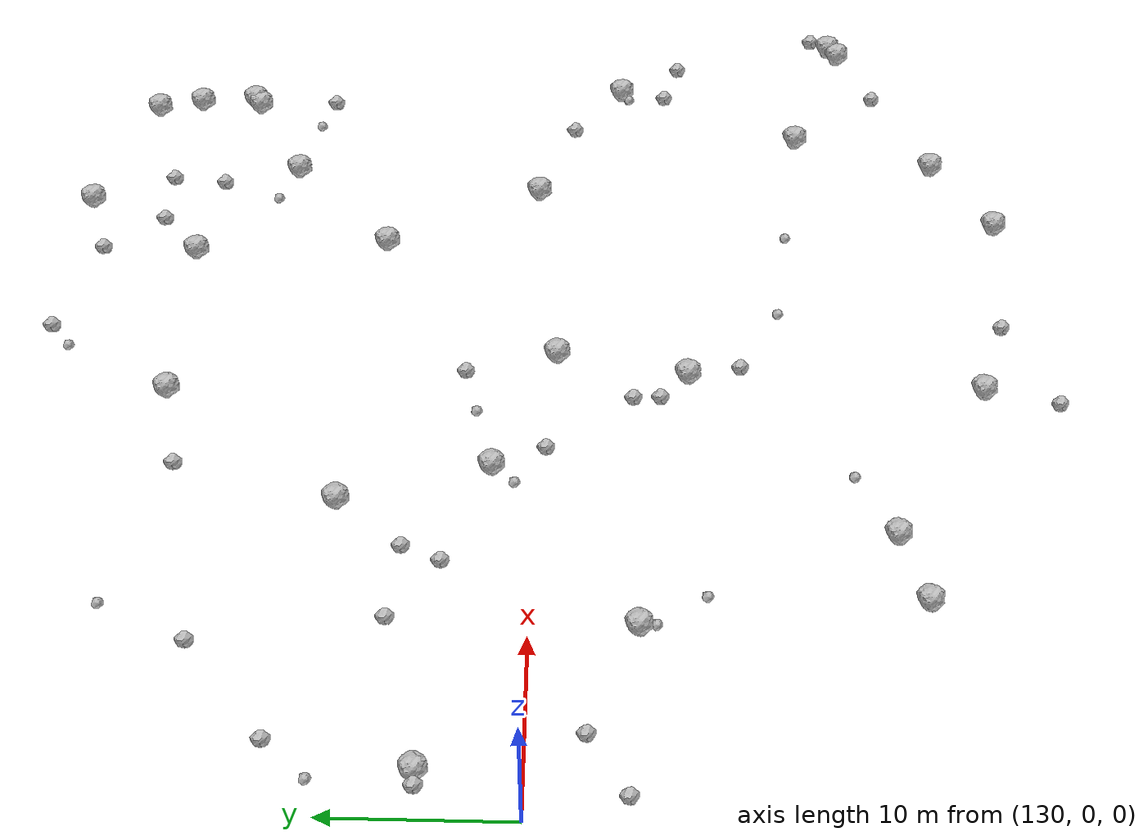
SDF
<sdf version="1.6">
 <world name="default">
  <include><uri>model://sun</uri></include>
  <model name="rock1_4_2">
   <include><uri>model://rock1</uri><pose>174.9402569007908 -15.353427377856086 0.5 0 0 0</pose></include>
  </model>
  <model name="rock1_4_3">
   <include><uri>model://rock1</uri><pose>170.31855802786458 0.18097817469871913 0.5 0 0 0</pose></include>
  </model>
  <model name="rock1_4_4">
   <include><uri>model://rock1</uri><pose>177.65825097538527 18.112810962630576 0.5 0 0 0</pose></include>
  </model>
  <model name="rock1_4_5">
   <include><uri>model://rock1</uri><pose>146.50915249691425 -19.29246882846438 0.5 0 0 0</pose></include>
  </model>
  <model name="rock1_4_6">
   <include><uri>model://rock1</uri><pose>169.1189969423057 26.891191136753477 0.5 0 0 0</pose></include>
  </model>
  <model name="rock1_4_7">
   <include><uri>model://rock1</uri><pose>156.06442700588502 -24.870390534201203 0.5 0 0 0</pose></include>
  </model>
  <model name="rock1_4_8">
   <include><uri>model://rock1</uri><pose>177.18898244617205 17.736577822828174 0.5 0 0 0</pose></include>
  </model>
  <model name="rock1_4_9">
   <include><uri>model://rock1</uri><pose>182.31821713699344 -18.399518020162585 0.5 0 0 0</pose></include>
  </model>
  <model name="rock1_4_10">
   <include><uri>model://rock1</uri><pose>155.14375223972476 20.503505146794133 0.5 0 0 0</pose></include>
  </model>
  <model name="rock1_4_11">
   <include><uri>model://rock1</uri><pose>176.79714272973158 23.988301300321332 0.5 0 0 0</pose></include>
  </model>
  <model name="rock1_4_12">
   <include><uri>model://rock1</uri><pose>172.8412374232613 -23.450767689396155 0.5 0 0 0</pose></include>
  </model>
  <model name="rock1_4_13">
   <include><uri>model://rock1</uri><pose>177.3587599801943 21.387934603004645 0.5 0 0 0</pose></include>
  </model>
  <model name="rock1_4_14">
   <include><uri>model://rock1</uri><pose>166.13553483583718 9.03675755071604 0.5 0 0 0</pose></include>
  </model>
  <model name="rock1_4_15">
   <include><uri>model://rock1</uri><pose>140.78588543872024 -5.647516220757677 0.5 0 0 0</pose></include>
  </model>
  <model name="rock1_4_16">
   <include><uri>model://rock1</uri><pose>178.76290551503433 -4.752093170353568 0.5 0 0 0</pose></include>
  </model>
  <model name="rock1_4_17">
   <include><uri>model://rock1</uri><pose>158.06146172249964 -1.1224973989452955 0.5 0 0 0</pose></include>
  </model>
  <model name="rock1_4_18">
   <include><uri>model://rock1</uri><pose>150.4077455153012 2.2566842890527354 0.5 0 0 0</pose></include>
  </model>
  <model name="rock1_4_19">
   <include><uri>model://rock1</uri><pose>182.9788978928068 -17.867375381473245 0.5 0 0 0</pose></include>
  </model>
  <model name="rock1_4_20">
   <include><uri>model://rock1</uri><pose>168.17455227486548 -26.742958552631876 0.5 0 0 0</pose></include>
  </model>
  <model name="rock1_4_21">
   <include><uri>model://rock1</uri><pose>142.55853237968893 -20.580026331585977 0.5 0 0 0</pose></include>
  </model>
  <model name="rock1_4_22">
   <include><uri>model://rock1</uri><pose>165.24339516897567 20.193703335884877 0.5 0 0 0</pose></include>
  </model>
  <model name="rock1_4_23">
   <include><uri>model://rock1</uri><pose>156.765617103951 -8.456679700509824 0.5 0 0 0</pose></include>
  </model>
  <model name="rock1_4_24">
   <include><uri>model://rock1</uri><pose>148.0492185279322 10.464285630422026 0.5 0 0 0</pose></include>
  </model>
  <model name="rock1_4_25">
   <include><uri>model://rock1</uri><pose>171.82728807946114 14.78717715338383 0.5 0 0 0</pose></include>
  </model>
  <model name="rock1_4_26">
   <include><uri>model://rock1</uri><pose>132.61277085469487 5.3250943906422705 0.5 0 0 0</pose></include>
  </model>
  <model name="rock2_4_0">
   <include><uri>model://rock2</uri><pose>151.51793228342999 -0.6491499855153506 0.3 0 0 0</pose></include>
  </model>
  <model name="rock2_4_1">
   <include><uri>model://rock2</uri><pose>178.19345309606183 -7.381743218354771 0.3 0 0 0</pose></include>
  </model>
  <model name="rock2_4_2">
   <include><uri>model://rock2</uri><pose>131.3555625942365 -5.152272205490306 0.3 0 0 0</pose></include>
  </model>
  <model name="rock2_4_3">
   <include><uri>model://rock2</uri><pose>156.59830466144135 3.9432774634075756 0.3 0 0 0</pose></include>
  </model>
  <model name="rock2_4_4">
   <include><uri>model://rock2</uri><pose>157.1744295638528 -11.387688231692643 0.3 0 0 0</pose></include>
  </model>
  <model name="rock2_4_5">
   <include><uri>model://rock2</uri><pose>131.67811452959478 5.270097677039743 0.3 0 0 0</pose></include>
  </model>
  <model name="rock2_4_6">
   <include><uri>model://rock2</uri><pose>165.2243168406991 25.701516128717167 0.3 0 0 0</pose></include>
  </model>
  <model name="rock2_4_7">
   <include><uri>model://rock2</uri><pose>159.3254066012367 27.680765673154966 0.3 0 0 0</pose></include>
  </model>
  <model name="rock2_4_8">
   <include><uri>model://rock2</uri><pose>139.28998524062524 17.351843516883434 0.3 0 0 0</pose></include>
  </model>
  <model name="rock2_4_9">
   <include><uri>model://rock2</uri><pose>170.48698586529466 19.171291168509413 0.3 0 0 0</pose></include>
  </model>
  <model name="rock2_4_10">
   <include><uri>model://rock2</uri><pose>155.07628864210278 -28.959654108750566 0.3 0 0 0</pose></include>
  </model>
  <model name="rock2_4_11">
   <include><uri>model://rock2</uri><pose>134.5733541062315 -3.0362065303485153 0.3 0 0 0</pose></include>
  </model>
  <model name="rock2_4_12">
   <include><uri>model://rock2</uri><pose>144.27184181279873 4.686535112649864 0.3 0 0 0</pose></include>
  </model>
  <model name="rock2_4_13">
   <include><uri>model://rock2</uri><pose>167.54522306170384 22.403321009567627 0.3 0 0 0</pose></include>
  </model>
  <model name="rock2_4_14">
   <include><uri>model://rock2</uri><pose>178.40420304887613 -20.351864818588286 0.3 0 0 0</pose></include>
  </model>
  <model name="rock2_4_15">
   <include><uri>model://rock2</uri><pose>175.31747633819455 -1.8915409451707497 0.3 0 0 0</pose></include>
  </model>
  <model name="rock2_4_16">
   <include><uri>model://rock2</uri><pose>155.03598366626755 -6.902173133581311 0.3 0 0 0</pose></include>
  </model>
  <model name="rock2_4_17">
   <include><uri>model://rock2</uri><pose>150.07884478714348 19.45668244457009 0.3 0 0 0</pose></include>
  </model>
  <model name="rock2_4_18">
   <include><uri>model://rock2</uri><pose>170.77006044468345 22.264682330725464 0.3 0 0 0</pose></include>
  </model>
  <model name="rock2_4_19">
   <include><uri>model://rock2</uri><pose>140.85651938114 7.322422261028272 0.3 0 0 0</pose></include>
  </model>
  <model name="rock2_4_20">
   <include><uri>model://rock2</uri><pose>133.92505426643143 12.86908196945518 0.3 0 0 0</pose></include>
  </model>
  <model name="rock2_4_21">
   <include><uri>model://rock2</uri><pose>154.96091591146373 -5.403095607377452 0.3 0 0 0</pose></include>
  </model>
  <model name="rock2_4_22">
   <include><uri>model://rock2</uri><pose>145.11851012494034 6.809479348262229 0.3 0 0 0</pose></include>
  </model>
  <model name="rock2_4_23">
   <include><uri>model://rock2</uri><pose>183.46268879946092 -16.812807916508845 0.3 0 0 0</pose></include>
  </model>
  <model name="rock2_4_24">
   <include><uri>model://rock2</uri><pose>160.34870858217317 -26.321490440860444 0.3 0 0 0</pose></include>
  </model>
  <model name="rock2_4_25">
   <include><uri>model://rock2</uri><pose>177.32898961854627 13.06130280273753 0.3 0 0 0</pose></include>
  </model>
  <model name="rock2_4_26">
   <include><uri>model://rock2</uri><pose>180.70622875008732 -8.255163250538239 0.3 0 0 0</pose></include>
  </model>
  <model name="rock3_4_0">
   <include><uri>model://rock3</uri><pose>149.9815220898777 -17.312033996080125 0.2 0 0 0</pose></include>
  </model>
  <model name="rock3_4_1">
   <include><uri>model://rock3</uri><pose>157.95545203631943 26.498164943616175 0.2 0 0 0</pose></include>
  </model>
  <model name="rock3_4_2">
   <include><uri>model://rock3</uri><pose>169.33573730091683 15.788630754480558 0.2 0 0 0</pose></include>
  </model>
  <model name="rock3_4_3">
   <include><uri>model://rock3</uri><pose>166.8512780847796 -14.41408640618003 0.2 0 0 0</pose></include>
  </model>
  <model name="rock3_4_4">
   <include><uri>model://rock3</uri><pose>141.3405822261696 22.096450879843303 0.2 0 0 0</pose></include>
  </model>
  <model name="rock3_4_5">
   <include><uri>model://rock3</uri><pose>131.90800912488032 10.500979798705544 0.2 0 0 0</pose></include>
  </model>
  <model name="rock3_4_6">
   <include><uri>model://rock3</uri><pose>175.36216536062074 13.760189563571117 0.2 0 0 0</pose></include>
  </model>
  <model name="rock3_4_7">
   <include><uri>model://rock3</uri><pose>161.09971067822303 -13.701649037744332 0.2 0 0 0</pose></include>
  </model>
  <model name="rock3_4_8">
   <include><uri>model://rock3</uri><pose>153.89333629163943 3.208179785066008 0.2 0 0 0</pose></include>
  </model>
  <model name="rock3_4_9">
   <include><uri>model://rock3</uri><pose>149.24905223189685 0.9779872169132773 0.2 0 0 0</pose></include>
  </model>
  <model name="rock3_4_10">
   <include><uri>model://rock3</uri><pose>178.06968002008347 -5.231250328927295 0.2 0 0 0</pose></include>
  </model>
  <model name="rock3_4_11">
   <include><uri>model://rock3</uri><pose>140.7293980757881 -6.574158614059257 0.2 0 0 0</pose></include>
  </model>
  <model name="rock3_4_12">
   <include><uri>model://rock3</uri><pose>142.4288363809015 -9.218062231921735 0.2 0 0 0</pose></include>
  </model>
 </world>
</sdf>
